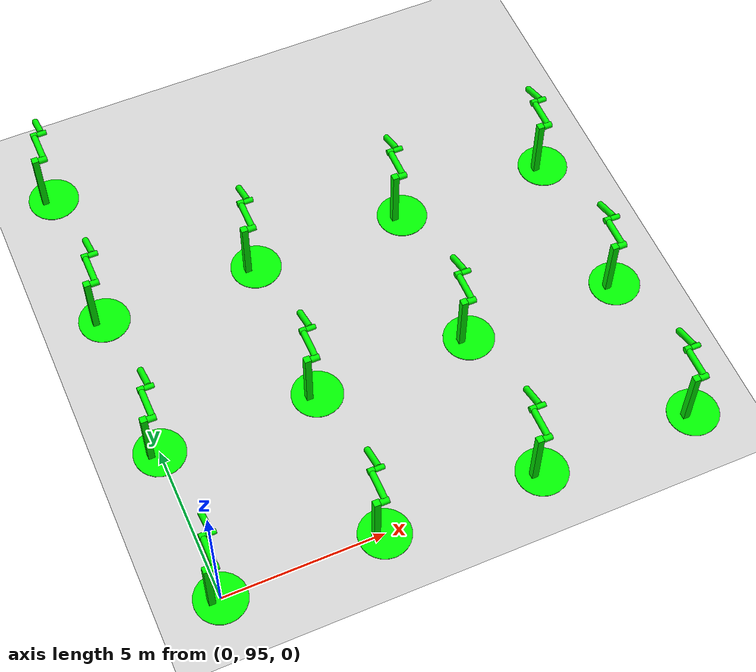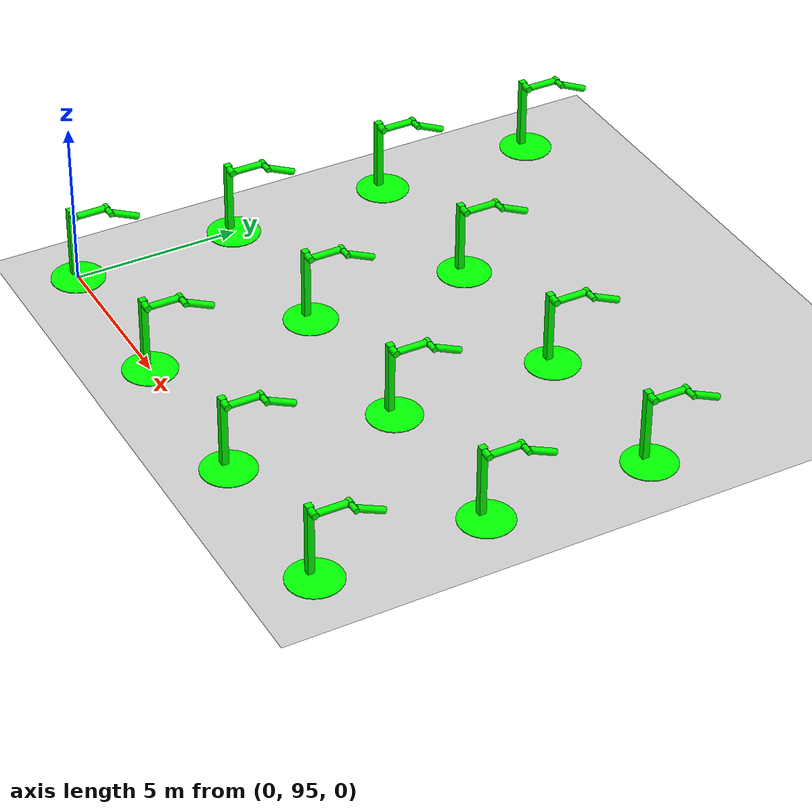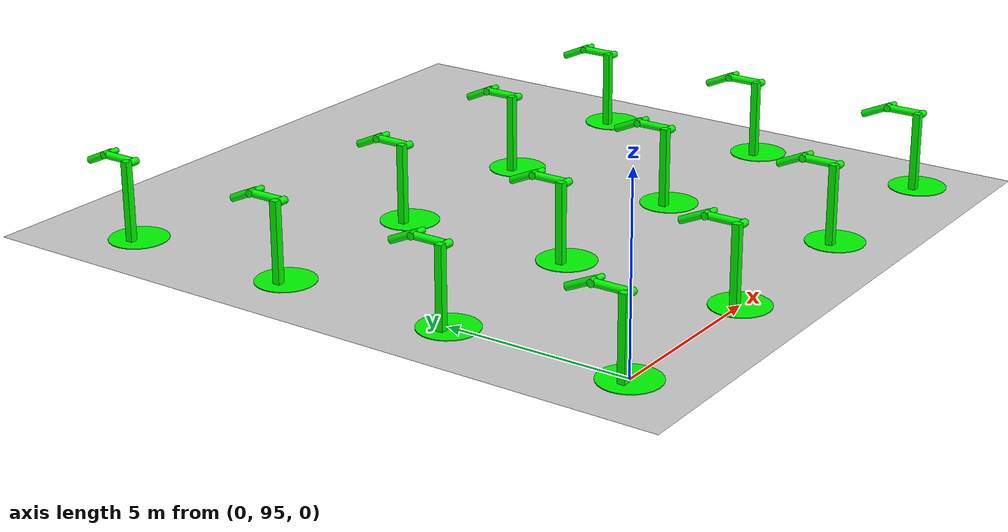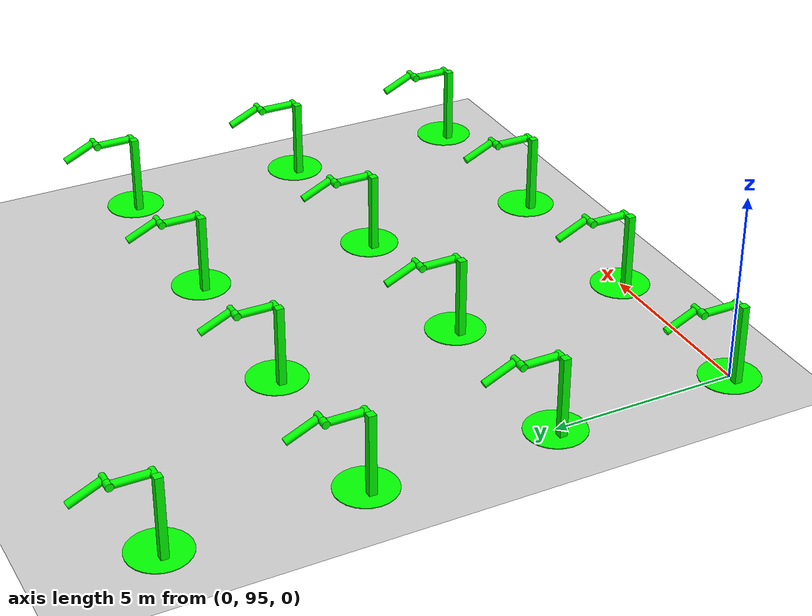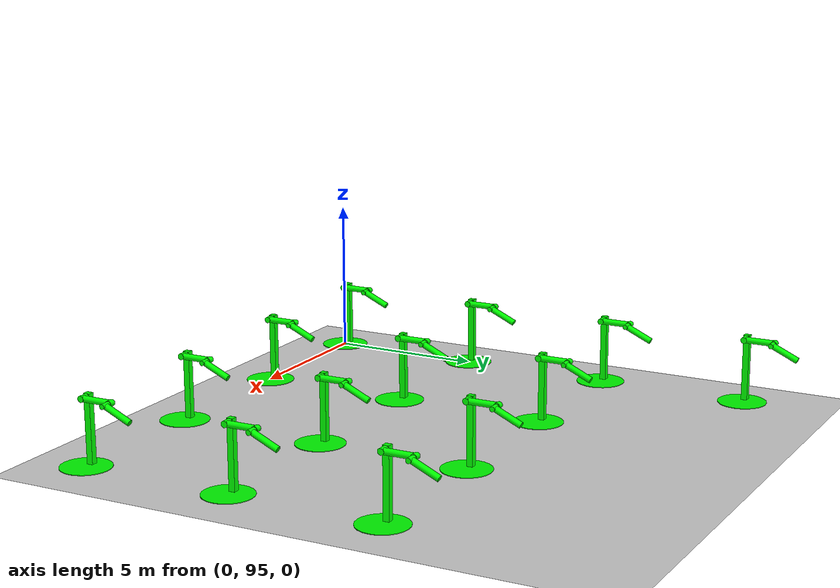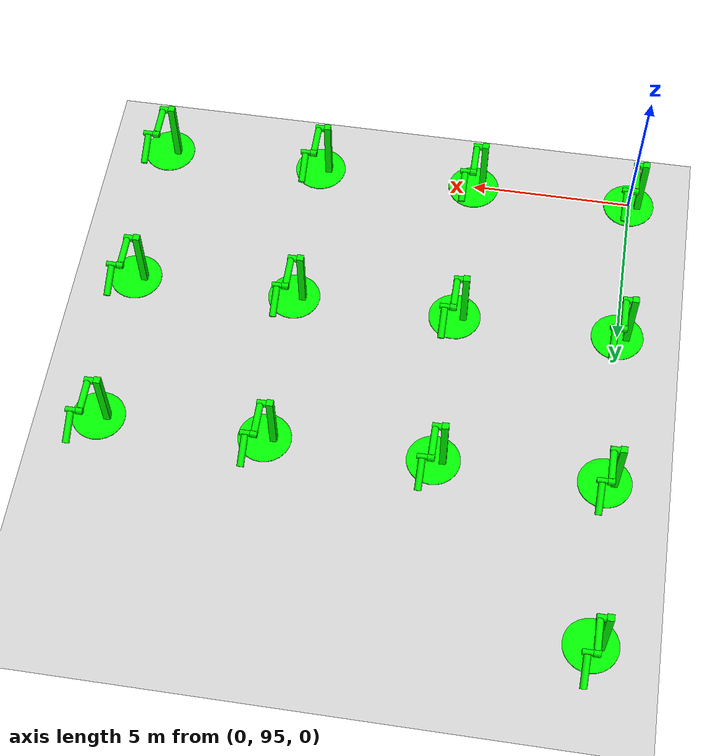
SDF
<sdf version="1.6">
 <world name="double_pendulums">
  <model name="ground_plane">
   <static>true</static>
   <link name="link">
    <collision name="collision">
     <geometry><plane><normal>0 0 1</normal><size>100 100</size></plane></geometry>
    </collision>
    <visual name="visual">
     <geometry><plane><normal>0 0 1</normal><size>100 100</size></plane></geometry>
     <material>
      <ambient>0.8 0.8 0.8 1</ambient>
      <diffuse>0.8 0.8 0.8 1</diffuse>
      <specular>0.8 0.8 0.8 1</specular>
     </material>
    </visual>
   </link>
  </model>
  <model name="dbl_pendulum_485">
   <pose>0 95 0 0 0 0</pose>
   <link name="base">
    <inertial><mass>100</mass></inertial>
    <visual name="vis_plate_on_ground">
     <pose>0 0 0.01 0 0 0</pose>
     <geometry><cylinder><radius>0.8</radius><length>0.02</length></cylinder></geometry>
     <material><ambient>0 1 0 1</ambient><diffuse>0 1 0 1</diffuse><specular>0 1 0 1</specular></material>
    </visual>
    <visual name="vis_pole">
     <pose>-0.275 0 1.1 0 0 0</pose>
     <geometry><box><size>0.2 0.2 2.2</size></box></geometry>
     <material><ambient>0 1 0 1</ambient><diffuse>0 1 0 1</diffuse><specular>0 1 0 1</specular></material>
    </visual>
    <collision name="col_plate_on_ground">
     <pose>0 0 0.01 0 0 0</pose>
     <geometry><cylinder><radius>0.8</radius><length>0.02</length></cylinder></geometry>
    </collision>
    <collision name="col_pole">
     <pose>-0.275 0 1.1 0 0 0</pose>
     <geometry><box><size>0.2 0.2 2.2</size></box></geometry>
    </collision>
   </link>
   <link name="upper_link">
    <pose>0 0 2.1 -1.5708 0 0</pose>
    <inertial><pose>0 0 0.5 0 0 0</pose></inertial>
    <visual name="vis_upper_joint">
     <pose>-0.05 0 0 0 1.5708 0</pose>
     <geometry><cylinder><radius>0.1</radius><length>0.3</length></cylinder></geometry>
     <material><ambient>0 1 0 1</ambient><diffuse>0 1 0 1</diffuse><specular>0 1 0 1</specular></material>
    </visual>
    <visual name="vis_lower_joint">
     <pose>0 0 1.0 0 1.5708 0</pose>
     <geometry><cylinder><radius>0.1</radius><length>0.2</length></cylinder></geometry>
     <material><ambient>0 1 0 1</ambient><diffuse>0 1 0 1</diffuse><specular>0 1 0 1</specular></material>
    </visual>
    <visual name="vis_cylinder">
     <pose>0 0 0.5 0 0 0</pose>
     <geometry><cylinder><radius>0.1</radius><length>0.9</length></cylinder></geometry>
     <material><ambient>0 1 0 1</ambient><diffuse>0 1 0 1</diffuse><specular>0 1 0 1</specular></material>
    </visual>
    <collision name="col_upper_joint">
     <pose>-0.05 0 0 0 1.5708 0</pose>
     <geometry><cylinder><radius>0.1</radius><length>0.3</length></cylinder></geometry>
    </collision>
    <collision name="col_lower_joint">
     <pose>0 0 1.0 0 1.5708 0</pose>
     <geometry><cylinder><radius>0.1</radius><length>0.2</length></cylinder></geometry>
    </collision>
    <collision name="col_cylinder">
     <pose>0 0 0.5 0 0 0</pose>
     <geometry><cylinder><radius>0.1</radius><length>0.9</length></cylinder></geometry>
    </collision>
   </link>
   <link name="lower_link">
    <pose>0.25 1.0 2.1 -2 0 0</pose>
    <inertial><pose>0 0 0.5 0 0 0</pose></inertial>
    <visual name="vis_lower_joint">
     <pose>0 0 0 0 1.5708 0</pose>
     <geometry><cylinder><radius>0.08</radius><length>0.3</length></cylinder></geometry>
     <material><ambient>0 1 0 1</ambient><diffuse>0 1 0 1</diffuse><specular>0 1 0 1</specular></material>
    </visual>
    <visual name="vis_cylinder">
     <pose>0 0 0.5 0 0 0</pose>
     <geometry><cylinder><radius>0.1</radius><length>0.9</length></cylinder></geometry>
     <material><ambient>0 1 0 1</ambient><diffuse>0 1 0 1</diffuse><specular>0 1 0 1</specular></material>
    </visual>
    <collision name="col_lower_joint">
     <pose>0 0 0 0 1.5708 0</pose>
     <geometry><cylinder><radius>0.08</radius><length>0.3</length></cylinder></geometry>
    </collision>
    <collision name="col_cylinder">
     <pose>0 0 0.5 0 0 0</pose>
     <geometry><cylinder><radius>0.1</radius><length>0.9</length></cylinder></geometry>
    </collision>
   </link>
   <joint name="upper_joint" type="revolute">
    <parent>base</parent>
    <child>upper_link</child>
    <axis><xyz>1.0 0 0</xyz></axis>
   </joint>
   <joint name="lower_joint" type="revolute">
    <parent>upper_link</parent>
    <child>lower_link</child>
    <axis><xyz>1.0 0 0</xyz></axis>
   </joint>
  </model>
  <model name="dbl_pendulum_486">
   <pose>5 95 0 0 0 0</pose>
   <link name="base">
    <inertial><mass>100</mass></inertial>
    <visual name="vis_plate_on_ground">
     <pose>0 0 0.01 0 0 0</pose>
     <geometry><cylinder><radius>0.8</radius><length>0.02</length></cylinder></geometry>
     <material><ambient>0 1 0 1</ambient><diffuse>0 1 0 1</diffuse><specular>0 1 0 1</specular></material>
    </visual>
    <visual name="vis_pole">
     <pose>-0.275 0 1.1 0 0 0</pose>
     <geometry><box><size>0.2 0.2 2.2</size></box></geometry>
     <material><ambient>0 1 0 1</ambient><diffuse>0 1 0 1</diffuse><specular>0 1 0 1</specular></material>
    </visual>
    <collision name="col_plate_on_ground">
     <pose>0 0 0.01 0 0 0</pose>
     <geometry><cylinder><radius>0.8</radius><length>0.02</length></cylinder></geometry>
    </collision>
    <collision name="col_pole">
     <pose>-0.275 0 1.1 0 0 0</pose>
     <geometry><box><size>0.2 0.2 2.2</size></box></geometry>
    </collision>
   </link>
   <link name="upper_link">
    <pose>0 0 2.1 -1.5708 0 0</pose>
    <inertial><pose>0 0 0.5 0 0 0</pose></inertial>
    <visual name="vis_upper_joint">
     <pose>-0.05 0 0 0 1.5708 0</pose>
     <geometry><cylinder><radius>0.1</radius><length>0.3</length></cylinder></geometry>
     <material><ambient>0 1 0 1</ambient><diffuse>0 1 0 1</diffuse><specular>0 1 0 1</specular></material>
    </visual>
    <visual name="vis_lower_joint">
     <pose>0 0 1.0 0 1.5708 0</pose>
     <geometry><cylinder><radius>0.1</radius><length>0.2</length></cylinder></geometry>
     <material><ambient>0 1 0 1</ambient><diffuse>0 1 0 1</diffuse><specular>0 1 0 1</specular></material>
    </visual>
    <visual name="vis_cylinder">
     <pose>0 0 0.5 0 0 0</pose>
     <geometry><cylinder><radius>0.1</radius><length>0.9</length></cylinder></geometry>
     <material><ambient>0 1 0 1</ambient><diffuse>0 1 0 1</diffuse><specular>0 1 0 1</specular></material>
    </visual>
    <collision name="col_upper_joint">
     <pose>-0.05 0 0 0 1.5708 0</pose>
     <geometry><cylinder><radius>0.1</radius><length>0.3</length></cylinder></geometry>
    </collision>
    <collision name="col_lower_joint">
     <pose>0 0 1.0 0 1.5708 0</pose>
     <geometry><cylinder><radius>0.1</radius><length>0.2</length></cylinder></geometry>
    </collision>
    <collision name="col_cylinder">
     <pose>0 0 0.5 0 0 0</pose>
     <geometry><cylinder><radius>0.1</radius><length>0.9</length></cylinder></geometry>
    </collision>
   </link>
   <link name="lower_link">
    <pose>0.25 1.0 2.1 -2 0 0</pose>
    <inertial><pose>0 0 0.5 0 0 0</pose></inertial>
    <visual name="vis_lower_joint">
     <pose>0 0 0 0 1.5708 0</pose>
     <geometry><cylinder><radius>0.08</radius><length>0.3</length></cylinder></geometry>
     <material><ambient>0 1 0 1</ambient><diffuse>0 1 0 1</diffuse><specular>0 1 0 1</specular></material>
    </visual>
    <visual name="vis_cylinder">
     <pose>0 0 0.5 0 0 0</pose>
     <geometry><cylinder><radius>0.1</radius><length>0.9</length></cylinder></geometry>
     <material><ambient>0 1 0 1</ambient><diffuse>0 1 0 1</diffuse><specular>0 1 0 1</specular></material>
    </visual>
    <collision name="col_lower_joint">
     <pose>0 0 0 0 1.5708 0</pose>
     <geometry><cylinder><radius>0.08</radius><length>0.3</length></cylinder></geometry>
    </collision>
    <collision name="col_cylinder">
     <pose>0 0 0.5 0 0 0</pose>
     <geometry><cylinder><radius>0.1</radius><length>0.9</length></cylinder></geometry>
    </collision>
   </link>
   <joint name="upper_joint" type="revolute">
    <parent>base</parent>
    <child>upper_link</child>
    <axis><xyz>1.0 0 0</xyz></axis>
   </joint>
   <joint name="lower_joint" type="revolute">
    <parent>upper_link</parent>
    <child>lower_link</child>
    <axis><xyz>1.0 0 0</xyz></axis>
   </joint>
  </model>
  <model name="dbl_pendulum_487">
   <pose>10 95 0 0 0 0</pose>
   <link name="base">
    <inertial><mass>100</mass></inertial>
    <visual name="vis_plate_on_ground">
     <pose>0 0 0.01 0 0 0</pose>
     <geometry><cylinder><radius>0.8</radius><length>0.02</length></cylinder></geometry>
     <material><ambient>0 1 0 1</ambient><diffuse>0 1 0 1</diffuse><specular>0 1 0 1</specular></material>
    </visual>
    <visual name="vis_pole">
     <pose>-0.275 0 1.1 0 0 0</pose>
     <geometry><box><size>0.2 0.2 2.2</size></box></geometry>
     <material><ambient>0 1 0 1</ambient><diffuse>0 1 0 1</diffuse><specular>0 1 0 1</specular></material>
    </visual>
    <collision name="col_plate_on_ground">
     <pose>0 0 0.01 0 0 0</pose>
     <geometry><cylinder><radius>0.8</radius><length>0.02</length></cylinder></geometry>
    </collision>
    <collision name="col_pole">
     <pose>-0.275 0 1.1 0 0 0</pose>
     <geometry><box><size>0.2 0.2 2.2</size></box></geometry>
    </collision>
   </link>
   <link name="upper_link">
    <pose>0 0 2.1 -1.5708 0 0</pose>
    <inertial><pose>0 0 0.5 0 0 0</pose></inertial>
    <visual name="vis_upper_joint">
     <pose>-0.05 0 0 0 1.5708 0</pose>
     <geometry><cylinder><radius>0.1</radius><length>0.3</length></cylinder></geometry>
     <material><ambient>0 1 0 1</ambient><diffuse>0 1 0 1</diffuse><specular>0 1 0 1</specular></material>
    </visual>
    <visual name="vis_lower_joint">
     <pose>0 0 1.0 0 1.5708 0</pose>
     <geometry><cylinder><radius>0.1</radius><length>0.2</length></cylinder></geometry>
     <material><ambient>0 1 0 1</ambient><diffuse>0 1 0 1</diffuse><specular>0 1 0 1</specular></material>
    </visual>
    <visual name="vis_cylinder">
     <pose>0 0 0.5 0 0 0</pose>
     <geometry><cylinder><radius>0.1</radius><length>0.9</length></cylinder></geometry>
     <material><ambient>0 1 0 1</ambient><diffuse>0 1 0 1</diffuse><specular>0 1 0 1</specular></material>
    </visual>
    <collision name="col_upper_joint">
     <pose>-0.05 0 0 0 1.5708 0</pose>
     <geometry><cylinder><radius>0.1</radius><length>0.3</length></cylinder></geometry>
    </collision>
    <collision name="col_lower_joint">
     <pose>0 0 1.0 0 1.5708 0</pose>
     <geometry><cylinder><radius>0.1</radius><length>0.2</length></cylinder></geometry>
    </collision>
    <collision name="col_cylinder">
     <pose>0 0 0.5 0 0 0</pose>
     <geometry><cylinder><radius>0.1</radius><length>0.9</length></cylinder></geometry>
    </collision>
   </link>
   <link name="lower_link">
    <pose>0.25 1.0 2.1 -2 0 0</pose>
    <inertial><pose>0 0 0.5 0 0 0</pose></inertial>
    <visual name="vis_lower_joint">
     <pose>0 0 0 0 1.5708 0</pose>
     <geometry><cylinder><radius>0.08</radius><length>0.3</length></cylinder></geometry>
     <material><ambient>0 1 0 1</ambient><diffuse>0 1 0 1</diffuse><specular>0 1 0 1</specular></material>
    </visual>
    <visual name="vis_cylinder">
     <pose>0 0 0.5 0 0 0</pose>
     <geometry><cylinder><radius>0.1</radius><length>0.9</length></cylinder></geometry>
     <material><ambient>0 1 0 1</ambient><diffuse>0 1 0 1</diffuse><specular>0 1 0 1</specular></material>
    </visual>
    <collision name="col_lower_joint">
     <pose>0 0 0 0 1.5708 0</pose>
     <geometry><cylinder><radius>0.08</radius><length>0.3</length></cylinder></geometry>
    </collision>
    <collision name="col_cylinder">
     <pose>0 0 0.5 0 0 0</pose>
     <geometry><cylinder><radius>0.1</radius><length>0.9</length></cylinder></geometry>
    </collision>
   </link>
   <joint name="upper_joint" type="revolute">
    <parent>base</parent>
    <child>upper_link</child>
    <axis><xyz>1.0 0 0</xyz></axis>
   </joint>
   <joint name="lower_joint" type="revolute">
    <parent>upper_link</parent>
    <child>lower_link</child>
    <axis><xyz>1.0 0 0</xyz></axis>
   </joint>
  </model>
  <model name="dbl_pendulum_488">
   <pose>15 95 0 0 0 0</pose>
   <link name="base">
    <inertial><mass>100</mass></inertial>
    <visual name="vis_plate_on_ground">
     <pose>0 0 0.01 0 0 0</pose>
     <geometry><cylinder><radius>0.8</radius><length>0.02</length></cylinder></geometry>
     <material><ambient>0 1 0 1</ambient><diffuse>0 1 0 1</diffuse><specular>0 1 0 1</specular></material>
    </visual>
    <visual name="vis_pole">
     <pose>-0.275 0 1.1 0 0 0</pose>
     <geometry><box><size>0.2 0.2 2.2</size></box></geometry>
     <material><ambient>0 1 0 1</ambient><diffuse>0 1 0 1</diffuse><specular>0 1 0 1</specular></material>
    </visual>
    <collision name="col_plate_on_ground">
     <pose>0 0 0.01 0 0 0</pose>
     <geometry><cylinder><radius>0.8</radius><length>0.02</length></cylinder></geometry>
    </collision>
    <collision name="col_pole">
     <pose>-0.275 0 1.1 0 0 0</pose>
     <geometry><box><size>0.2 0.2 2.2</size></box></geometry>
    </collision>
   </link>
   <link name="upper_link">
    <pose>0 0 2.1 -1.5708 0 0</pose>
    <inertial><pose>0 0 0.5 0 0 0</pose></inertial>
    <visual name="vis_upper_joint">
     <pose>-0.05 0 0 0 1.5708 0</pose>
     <geometry><cylinder><radius>0.1</radius><length>0.3</length></cylinder></geometry>
     <material><ambient>0 1 0 1</ambient><diffuse>0 1 0 1</diffuse><specular>0 1 0 1</specular></material>
    </visual>
    <visual name="vis_lower_joint">
     <pose>0 0 1.0 0 1.5708 0</pose>
     <geometry><cylinder><radius>0.1</radius><length>0.2</length></cylinder></geometry>
     <material><ambient>0 1 0 1</ambient><diffuse>0 1 0 1</diffuse><specular>0 1 0 1</specular></material>
    </visual>
    <visual name="vis_cylinder">
     <pose>0 0 0.5 0 0 0</pose>
     <geometry><cylinder><radius>0.1</radius><length>0.9</length></cylinder></geometry>
     <material><ambient>0 1 0 1</ambient><diffuse>0 1 0 1</diffuse><specular>0 1 0 1</specular></material>
    </visual>
    <collision name="col_upper_joint">
     <pose>-0.05 0 0 0 1.5708 0</pose>
     <geometry><cylinder><radius>0.1</radius><length>0.3</length></cylinder></geometry>
    </collision>
    <collision name="col_lower_joint">
     <pose>0 0 1.0 0 1.5708 0</pose>
     <geometry><cylinder><radius>0.1</radius><length>0.2</length></cylinder></geometry>
    </collision>
    <collision name="col_cylinder">
     <pose>0 0 0.5 0 0 0</pose>
     <geometry><cylinder><radius>0.1</radius><length>0.9</length></cylinder></geometry>
    </collision>
   </link>
   <link name="lower_link">
    <pose>0.25 1.0 2.1 -2 0 0</pose>
    <inertial><pose>0 0 0.5 0 0 0</pose></inertial>
    <visual name="vis_lower_joint">
     <pose>0 0 0 0 1.5708 0</pose>
     <geometry><cylinder><radius>0.08</radius><length>0.3</length></cylinder></geometry>
     <material><ambient>0 1 0 1</ambient><diffuse>0 1 0 1</diffuse><specular>0 1 0 1</specular></material>
    </visual>
    <visual name="vis_cylinder">
     <pose>0 0 0.5 0 0 0</pose>
     <geometry><cylinder><radius>0.1</radius><length>0.9</length></cylinder></geometry>
     <material><ambient>0 1 0 1</ambient><diffuse>0 1 0 1</diffuse><specular>0 1 0 1</specular></material>
    </visual>
    <collision name="col_lower_joint">
     <pose>0 0 0 0 1.5708 0</pose>
     <geometry><cylinder><radius>0.08</radius><length>0.3</length></cylinder></geometry>
    </collision>
    <collision name="col_cylinder">
     <pose>0 0 0.5 0 0 0</pose>
     <geometry><cylinder><radius>0.1</radius><length>0.9</length></cylinder></geometry>
    </collision>
   </link>
   <joint name="upper_joint" type="revolute">
    <parent>base</parent>
    <child>upper_link</child>
    <axis><xyz>1.0 0 0</xyz></axis>
   </joint>
   <joint name="lower_joint" type="revolute">
    <parent>upper_link</parent>
    <child>lower_link</child>
    <axis><xyz>1.0 0 0</xyz></axis>
   </joint>
  </model>
  <model name="dbl_pendulum_510">
   <pose>0 100 0 0 0 0</pose>
   <link name="base">
    <inertial><mass>100</mass></inertial>
    <visual name="vis_plate_on_ground">
     <pose>0 0 0.01 0 0 0</pose>
     <geometry><cylinder><radius>0.8</radius><length>0.02</length></cylinder></geometry>
     <material><ambient>0 1 0 1</ambient><diffuse>0 1 0 1</diffuse><specular>0 1 0 1</specular></material>
    </visual>
    <visual name="vis_pole">
     <pose>-0.275 0 1.1 0 0 0</pose>
     <geometry><box><size>0.2 0.2 2.2</size></box></geometry>
     <material><ambient>0 1 0 1</ambient><diffuse>0 1 0 1</diffuse><specular>0 1 0 1</specular></material>
    </visual>
    <collision name="col_plate_on_ground">
     <pose>0 0 0.01 0 0 0</pose>
     <geometry><cylinder><radius>0.8</radius><length>0.02</length></cylinder></geometry>
    </collision>
    <collision name="col_pole">
     <pose>-0.275 0 1.1 0 0 0</pose>
     <geometry><box><size>0.2 0.2 2.2</size></box></geometry>
    </collision>
   </link>
   <link name="upper_link">
    <pose>0 0 2.1 -1.5708 0 0</pose>
    <inertial><pose>0 0 0.5 0 0 0</pose></inertial>
    <visual name="vis_upper_joint">
     <pose>-0.05 0 0 0 1.5708 0</pose>
     <geometry><cylinder><radius>0.1</radius><length>0.3</length></cylinder></geometry>
     <material><ambient>0 1 0 1</ambient><diffuse>0 1 0 1</diffuse><specular>0 1 0 1</specular></material>
    </visual>
    <visual name="vis_lower_joint">
     <pose>0 0 1.0 0 1.5708 0</pose>
     <geometry><cylinder><radius>0.1</radius><length>0.2</length></cylinder></geometry>
     <material><ambient>0 1 0 1</ambient><diffuse>0 1 0 1</diffuse><specular>0 1 0 1</specular></material>
    </visual>
    <visual name="vis_cylinder">
     <pose>0 0 0.5 0 0 0</pose>
     <geometry><cylinder><radius>0.1</radius><length>0.9</length></cylinder></geometry>
     <material><ambient>0 1 0 1</ambient><diffuse>0 1 0 1</diffuse><specular>0 1 0 1</specular></material>
    </visual>
    <collision name="col_upper_joint">
     <pose>-0.05 0 0 0 1.5708 0</pose>
     <geometry><cylinder><radius>0.1</radius><length>0.3</length></cylinder></geometry>
    </collision>
    <collision name="col_lower_joint">
     <pose>0 0 1.0 0 1.5708 0</pose>
     <geometry><cylinder><radius>0.1</radius><length>0.2</length></cylinder></geometry>
    </collision>
    <collision name="col_cylinder">
     <pose>0 0 0.5 0 0 0</pose>
     <geometry><cylinder><radius>0.1</radius><length>0.9</length></cylinder></geometry>
    </collision>
   </link>
   <link name="lower_link">
    <pose>0.25 1.0 2.1 -2 0 0</pose>
    <inertial><pose>0 0 0.5 0 0 0</pose></inertial>
    <visual name="vis_lower_joint">
     <pose>0 0 0 0 1.5708 0</pose>
     <geometry><cylinder><radius>0.08</radius><length>0.3</length></cylinder></geometry>
     <material><ambient>0 1 0 1</ambient><diffuse>0 1 0 1</diffuse><specular>0 1 0 1</specular></material>
    </visual>
    <visual name="vis_cylinder">
     <pose>0 0 0.5 0 0 0</pose>
     <geometry><cylinder><radius>0.1</radius><length>0.9</length></cylinder></geometry>
     <material><ambient>0 1 0 1</ambient><diffuse>0 1 0 1</diffuse><specular>0 1 0 1</specular></material>
    </visual>
    <collision name="col_lower_joint">
     <pose>0 0 0 0 1.5708 0</pose>
     <geometry><cylinder><radius>0.08</radius><length>0.3</length></cylinder></geometry>
    </collision>
    <collision name="col_cylinder">
     <pose>0 0 0.5 0 0 0</pose>
     <geometry><cylinder><radius>0.1</radius><length>0.9</length></cylinder></geometry>
    </collision>
   </link>
   <joint name="upper_joint" type="revolute">
    <parent>base</parent>
    <child>upper_link</child>
    <axis><xyz>1.0 0 0</xyz></axis>
   </joint>
   <joint name="lower_joint" type="revolute">
    <parent>upper_link</parent>
    <child>lower_link</child>
    <axis><xyz>1.0 0 0</xyz></axis>
   </joint>
  </model>
  <model name="dbl_pendulum_511">
   <pose>5 100 0 0 0 0</pose>
   <link name="base">
    <inertial><mass>100</mass></inertial>
    <visual name="vis_plate_on_ground">
     <pose>0 0 0.01 0 0 0</pose>
     <geometry><cylinder><radius>0.8</radius><length>0.02</length></cylinder></geometry>
     <material><ambient>0 1 0 1</ambient><diffuse>0 1 0 1</diffuse><specular>0 1 0 1</specular></material>
    </visual>
    <visual name="vis_pole">
     <pose>-0.275 0 1.1 0 0 0</pose>
     <geometry><box><size>0.2 0.2 2.2</size></box></geometry>
     <material><ambient>0 1 0 1</ambient><diffuse>0 1 0 1</diffuse><specular>0 1 0 1</specular></material>
    </visual>
    <collision name="col_plate_on_ground">
     <pose>0 0 0.01 0 0 0</pose>
     <geometry><cylinder><radius>0.8</radius><length>0.02</length></cylinder></geometry>
    </collision>
    <collision name="col_pole">
     <pose>-0.275 0 1.1 0 0 0</pose>
     <geometry><box><size>0.2 0.2 2.2</size></box></geometry>
    </collision>
   </link>
   <link name="upper_link">
    <pose>0 0 2.1 -1.5708 0 0</pose>
    <inertial><pose>0 0 0.5 0 0 0</pose></inertial>
    <visual name="vis_upper_joint">
     <pose>-0.05 0 0 0 1.5708 0</pose>
     <geometry><cylinder><radius>0.1</radius><length>0.3</length></cylinder></geometry>
     <material><ambient>0 1 0 1</ambient><diffuse>0 1 0 1</diffuse><specular>0 1 0 1</specular></material>
    </visual>
    <visual name="vis_lower_joint">
     <pose>0 0 1.0 0 1.5708 0</pose>
     <geometry><cylinder><radius>0.1</radius><length>0.2</length></cylinder></geometry>
     <material><ambient>0 1 0 1</ambient><diffuse>0 1 0 1</diffuse><specular>0 1 0 1</specular></material>
    </visual>
    <visual name="vis_cylinder">
     <pose>0 0 0.5 0 0 0</pose>
     <geometry><cylinder><radius>0.1</radius><length>0.9</length></cylinder></geometry>
     <material><ambient>0 1 0 1</ambient><diffuse>0 1 0 1</diffuse><specular>0 1 0 1</specular></material>
    </visual>
    <collision name="col_upper_joint">
     <pose>-0.05 0 0 0 1.5708 0</pose>
     <geometry><cylinder><radius>0.1</radius><length>0.3</length></cylinder></geometry>
    </collision>
    <collision name="col_lower_joint">
     <pose>0 0 1.0 0 1.5708 0</pose>
     <geometry><cylinder><radius>0.1</radius><length>0.2</length></cylinder></geometry>
    </collision>
    <collision name="col_cylinder">
     <pose>0 0 0.5 0 0 0</pose>
     <geometry><cylinder><radius>0.1</radius><length>0.9</length></cylinder></geometry>
    </collision>
   </link>
   <link name="lower_link">
    <pose>0.25 1.0 2.1 -2 0 0</pose>
    <inertial><pose>0 0 0.5 0 0 0</pose></inertial>
    <visual name="vis_lower_joint">
     <pose>0 0 0 0 1.5708 0</pose>
     <geometry><cylinder><radius>0.08</radius><length>0.3</length></cylinder></geometry>
     <material><ambient>0 1 0 1</ambient><diffuse>0 1 0 1</diffuse><specular>0 1 0 1</specular></material>
    </visual>
    <visual name="vis_cylinder">
     <pose>0 0 0.5 0 0 0</pose>
     <geometry><cylinder><radius>0.1</radius><length>0.9</length></cylinder></geometry>
     <material><ambient>0 1 0 1</ambient><diffuse>0 1 0 1</diffuse><specular>0 1 0 1</specular></material>
    </visual>
    <collision name="col_lower_joint">
     <pose>0 0 0 0 1.5708 0</pose>
     <geometry><cylinder><radius>0.08</radius><length>0.3</length></cylinder></geometry>
    </collision>
    <collision name="col_cylinder">
     <pose>0 0 0.5 0 0 0</pose>
     <geometry><cylinder><radius>0.1</radius><length>0.9</length></cylinder></geometry>
    </collision>
   </link>
   <joint name="upper_joint" type="revolute">
    <parent>base</parent>
    <child>upper_link</child>
    <axis><xyz>1.0 0 0</xyz></axis>
   </joint>
   <joint name="lower_joint" type="revolute">
    <parent>upper_link</parent>
    <child>lower_link</child>
    <axis><xyz>1.0 0 0</xyz></axis>
   </joint>
  </model>
  <model name="dbl_pendulum_512">
   <pose>10 100 0 0 0 0</pose>
   <link name="base">
    <inertial><mass>100</mass></inertial>
    <visual name="vis_plate_on_ground">
     <pose>0 0 0.01 0 0 0</pose>
     <geometry><cylinder><radius>0.8</radius><length>0.02</length></cylinder></geometry>
     <material><ambient>0 1 0 1</ambient><diffuse>0 1 0 1</diffuse><specular>0 1 0 1</specular></material>
    </visual>
    <visual name="vis_pole">
     <pose>-0.275 0 1.1 0 0 0</pose>
     <geometry><box><size>0.2 0.2 2.2</size></box></geometry>
     <material><ambient>0 1 0 1</ambient><diffuse>0 1 0 1</diffuse><specular>0 1 0 1</specular></material>
    </visual>
    <collision name="col_plate_on_ground">
     <pose>0 0 0.01 0 0 0</pose>
     <geometry><cylinder><radius>0.8</radius><length>0.02</length></cylinder></geometry>
    </collision>
    <collision name="col_pole">
     <pose>-0.275 0 1.1 0 0 0</pose>
     <geometry><box><size>0.2 0.2 2.2</size></box></geometry>
    </collision>
   </link>
   <link name="upper_link">
    <pose>0 0 2.1 -1.5708 0 0</pose>
    <inertial><pose>0 0 0.5 0 0 0</pose></inertial>
    <visual name="vis_upper_joint">
     <pose>-0.05 0 0 0 1.5708 0</pose>
     <geometry><cylinder><radius>0.1</radius><length>0.3</length></cylinder></geometry>
     <material><ambient>0 1 0 1</ambient><diffuse>0 1 0 1</diffuse><specular>0 1 0 1</specular></material>
    </visual>
    <visual name="vis_lower_joint">
     <pose>0 0 1.0 0 1.5708 0</pose>
     <geometry><cylinder><radius>0.1</radius><length>0.2</length></cylinder></geometry>
     <material><ambient>0 1 0 1</ambient><diffuse>0 1 0 1</diffuse><specular>0 1 0 1</specular></material>
    </visual>
    <visual name="vis_cylinder">
     <pose>0 0 0.5 0 0 0</pose>
     <geometry><cylinder><radius>0.1</radius><length>0.9</length></cylinder></geometry>
     <material><ambient>0 1 0 1</ambient><diffuse>0 1 0 1</diffuse><specular>0 1 0 1</specular></material>
    </visual>
    <collision name="col_upper_joint">
     <pose>-0.05 0 0 0 1.5708 0</pose>
     <geometry><cylinder><radius>0.1</radius><length>0.3</length></cylinder></geometry>
    </collision>
    <collision name="col_lower_joint">
     <pose>0 0 1.0 0 1.5708 0</pose>
     <geometry><cylinder><radius>0.1</radius><length>0.2</length></cylinder></geometry>
    </collision>
    <collision name="col_cylinder">
     <pose>0 0 0.5 0 0 0</pose>
     <geometry><cylinder><radius>0.1</radius><length>0.9</length></cylinder></geometry>
    </collision>
   </link>
   <link name="lower_link">
    <pose>0.25 1.0 2.1 -2 0 0</pose>
    <inertial><pose>0 0 0.5 0 0 0</pose></inertial>
    <visual name="vis_lower_joint">
     <pose>0 0 0 0 1.5708 0</pose>
     <geometry><cylinder><radius>0.08</radius><length>0.3</length></cylinder></geometry>
     <material><ambient>0 1 0 1</ambient><diffuse>0 1 0 1</diffuse><specular>0 1 0 1</specular></material>
    </visual>
    <visual name="vis_cylinder">
     <pose>0 0 0.5 0 0 0</pose>
     <geometry><cylinder><radius>0.1</radius><length>0.9</length></cylinder></geometry>
     <material><ambient>0 1 0 1</ambient><diffuse>0 1 0 1</diffuse><specular>0 1 0 1</specular></material>
    </visual>
    <collision name="col_lower_joint">
     <pose>0 0 0 0 1.5708 0</pose>
     <geometry><cylinder><radius>0.08</radius><length>0.3</length></cylinder></geometry>
    </collision>
    <collision name="col_cylinder">
     <pose>0 0 0.5 0 0 0</pose>
     <geometry><cylinder><radius>0.1</radius><length>0.9</length></cylinder></geometry>
    </collision>
   </link>
   <joint name="upper_joint" type="revolute">
    <parent>base</parent>
    <child>upper_link</child>
    <axis><xyz>1.0 0 0</xyz></axis>
   </joint>
   <joint name="lower_joint" type="revolute">
    <parent>upper_link</parent>
    <child>lower_link</child>
    <axis><xyz>1.0 0 0</xyz></axis>
   </joint>
  </model>
  <model name="dbl_pendulum_513">
   <pose>15 100 0 0 0 0</pose>
   <link name="base">
    <inertial><mass>100</mass></inertial>
    <visual name="vis_plate_on_ground">
     <pose>0 0 0.01 0 0 0</pose>
     <geometry><cylinder><radius>0.8</radius><length>0.02</length></cylinder></geometry>
     <material><ambient>0 1 0 1</ambient><diffuse>0 1 0 1</diffuse><specular>0 1 0 1</specular></material>
    </visual>
    <visual name="vis_pole">
     <pose>-0.275 0 1.1 0 0 0</pose>
     <geometry><box><size>0.2 0.2 2.2</size></box></geometry>
     <material><ambient>0 1 0 1</ambient><diffuse>0 1 0 1</diffuse><specular>0 1 0 1</specular></material>
    </visual>
    <collision name="col_plate_on_ground">
     <pose>0 0 0.01 0 0 0</pose>
     <geometry><cylinder><radius>0.8</radius><length>0.02</length></cylinder></geometry>
    </collision>
    <collision name="col_pole">
     <pose>-0.275 0 1.1 0 0 0</pose>
     <geometry><box><size>0.2 0.2 2.2</size></box></geometry>
    </collision>
   </link>
   <link name="upper_link">
    <pose>0 0 2.1 -1.5708 0 0</pose>
    <inertial><pose>0 0 0.5 0 0 0</pose></inertial>
    <visual name="vis_upper_joint">
     <pose>-0.05 0 0 0 1.5708 0</pose>
     <geometry><cylinder><radius>0.1</radius><length>0.3</length></cylinder></geometry>
     <material><ambient>0 1 0 1</ambient><diffuse>0 1 0 1</diffuse><specular>0 1 0 1</specular></material>
    </visual>
    <visual name="vis_lower_joint">
     <pose>0 0 1.0 0 1.5708 0</pose>
     <geometry><cylinder><radius>0.1</radius><length>0.2</length></cylinder></geometry>
     <material><ambient>0 1 0 1</ambient><diffuse>0 1 0 1</diffuse><specular>0 1 0 1</specular></material>
    </visual>
    <visual name="vis_cylinder">
     <pose>0 0 0.5 0 0 0</pose>
     <geometry><cylinder><radius>0.1</radius><length>0.9</length></cylinder></geometry>
     <material><ambient>0 1 0 1</ambient><diffuse>0 1 0 1</diffuse><specular>0 1 0 1</specular></material>
    </visual>
    <collision name="col_upper_joint">
     <pose>-0.05 0 0 0 1.5708 0</pose>
     <geometry><cylinder><radius>0.1</radius><length>0.3</length></cylinder></geometry>
    </collision>
    <collision name="col_lower_joint">
     <pose>0 0 1.0 0 1.5708 0</pose>
     <geometry><cylinder><radius>0.1</radius><length>0.2</length></cylinder></geometry>
    </collision>
    <collision name="col_cylinder">
     <pose>0 0 0.5 0 0 0</pose>
     <geometry><cylinder><radius>0.1</radius><length>0.9</length></cylinder></geometry>
    </collision>
   </link>
   <link name="lower_link">
    <pose>0.25 1.0 2.1 -2 0 0</pose>
    <inertial><pose>0 0 0.5 0 0 0</pose></inertial>
    <visual name="vis_lower_joint">
     <pose>0 0 0 0 1.5708 0</pose>
     <geometry><cylinder><radius>0.08</radius><length>0.3</length></cylinder></geometry>
     <material><ambient>0 1 0 1</ambient><diffuse>0 1 0 1</diffuse><specular>0 1 0 1</specular></material>
    </visual>
    <visual name="vis_cylinder">
     <pose>0 0 0.5 0 0 0</pose>
     <geometry><cylinder><radius>0.1</radius><length>0.9</length></cylinder></geometry>
     <material><ambient>0 1 0 1</ambient><diffuse>0 1 0 1</diffuse><specular>0 1 0 1</specular></material>
    </visual>
    <collision name="col_lower_joint">
     <pose>0 0 0 0 1.5708 0</pose>
     <geometry><cylinder><radius>0.08</radius><length>0.3</length></cylinder></geometry>
    </collision>
    <collision name="col_cylinder">
     <pose>0 0 0.5 0 0 0</pose>
     <geometry><cylinder><radius>0.1</radius><length>0.9</length></cylinder></geometry>
    </collision>
   </link>
   <joint name="upper_joint" type="revolute">
    <parent>base</parent>
    <child>upper_link</child>
    <axis><xyz>1.0 0 0</xyz></axis>
   </joint>
   <joint name="lower_joint" type="revolute">
    <parent>upper_link</parent>
    <child>lower_link</child>
    <axis><xyz>1.0 0 0</xyz></axis>
   </joint>
  </model>
  <model name="dbl_pendulum_535">
   <pose>0 105 0 0 0 0</pose>
   <link name="base">
    <inertial><mass>100</mass></inertial>
    <visual name="vis_plate_on_ground">
     <pose>0 0 0.01 0 0 0</pose>
     <geometry><cylinder><radius>0.8</radius><length>0.02</length></cylinder></geometry>
     <material><ambient>0 1 0 1</ambient><diffuse>0 1 0 1</diffuse><specular>0 1 0 1</specular></material>
    </visual>
    <visual name="vis_pole">
     <pose>-0.275 0 1.1 0 0 0</pose>
     <geometry><box><size>0.2 0.2 2.2</size></box></geometry>
     <material><ambient>0 1 0 1</ambient><diffuse>0 1 0 1</diffuse><specular>0 1 0 1</specular></material>
    </visual>
    <collision name="col_plate_on_ground">
     <pose>0 0 0.01 0 0 0</pose>
     <geometry><cylinder><radius>0.8</radius><length>0.02</length></cylinder></geometry>
    </collision>
    <collision name="col_pole">
     <pose>-0.275 0 1.1 0 0 0</pose>
     <geometry><box><size>0.2 0.2 2.2</size></box></geometry>
    </collision>
   </link>
   <link name="upper_link">
    <pose>0 0 2.1 -1.5708 0 0</pose>
    <inertial><pose>0 0 0.5 0 0 0</pose></inertial>
    <visual name="vis_upper_joint">
     <pose>-0.05 0 0 0 1.5708 0</pose>
     <geometry><cylinder><radius>0.1</radius><length>0.3</length></cylinder></geometry>
     <material><ambient>0 1 0 1</ambient><diffuse>0 1 0 1</diffuse><specular>0 1 0 1</specular></material>
    </visual>
    <visual name="vis_lower_joint">
     <pose>0 0 1.0 0 1.5708 0</pose>
     <geometry><cylinder><radius>0.1</radius><length>0.2</length></cylinder></geometry>
     <material><ambient>0 1 0 1</ambient><diffuse>0 1 0 1</diffuse><specular>0 1 0 1</specular></material>
    </visual>
    <visual name="vis_cylinder">
     <pose>0 0 0.5 0 0 0</pose>
     <geometry><cylinder><radius>0.1</radius><length>0.9</length></cylinder></geometry>
     <material><ambient>0 1 0 1</ambient><diffuse>0 1 0 1</diffuse><specular>0 1 0 1</specular></material>
    </visual>
    <collision name="col_upper_joint">
     <pose>-0.05 0 0 0 1.5708 0</pose>
     <geometry><cylinder><radius>0.1</radius><length>0.3</length></cylinder></geometry>
    </collision>
    <collision name="col_lower_joint">
     <pose>0 0 1.0 0 1.5708 0</pose>
     <geometry><cylinder><radius>0.1</radius><length>0.2</length></cylinder></geometry>
    </collision>
    <collision name="col_cylinder">
     <pose>0 0 0.5 0 0 0</pose>
     <geometry><cylinder><radius>0.1</radius><length>0.9</length></cylinder></geometry>
    </collision>
   </link>
   <link name="lower_link">
    <pose>0.25 1.0 2.1 -2 0 0</pose>
    <inertial><pose>0 0 0.5 0 0 0</pose></inertial>
    <visual name="vis_lower_joint">
     <pose>0 0 0 0 1.5708 0</pose>
     <geometry><cylinder><radius>0.08</radius><length>0.3</length></cylinder></geometry>
     <material><ambient>0 1 0 1</ambient><diffuse>0 1 0 1</diffuse><specular>0 1 0 1</specular></material>
    </visual>
    <visual name="vis_cylinder">
     <pose>0 0 0.5 0 0 0</pose>
     <geometry><cylinder><radius>0.1</radius><length>0.9</length></cylinder></geometry>
     <material><ambient>0 1 0 1</ambient><diffuse>0 1 0 1</diffuse><specular>0 1 0 1</specular></material>
    </visual>
    <collision name="col_lower_joint">
     <pose>0 0 0 0 1.5708 0</pose>
     <geometry><cylinder><radius>0.08</radius><length>0.3</length></cylinder></geometry>
    </collision>
    <collision name="col_cylinder">
     <pose>0 0 0.5 0 0 0</pose>
     <geometry><cylinder><radius>0.1</radius><length>0.9</length></cylinder></geometry>
    </collision>
   </link>
   <joint name="upper_joint" type="revolute">
    <parent>base</parent>
    <child>upper_link</child>
    <axis><xyz>1.0 0 0</xyz></axis>
   </joint>
   <joint name="lower_joint" type="revolute">
    <parent>upper_link</parent>
    <child>lower_link</child>
    <axis><xyz>1.0 0 0</xyz></axis>
   </joint>
  </model>
  <model name="dbl_pendulum_536">
   <pose>5 105 0 0 0 0</pose>
   <link name="base">
    <inertial><mass>100</mass></inertial>
    <visual name="vis_plate_on_ground">
     <pose>0 0 0.01 0 0 0</pose>
     <geometry><cylinder><radius>0.8</radius><length>0.02</length></cylinder></geometry>
     <material><ambient>0 1 0 1</ambient><diffuse>0 1 0 1</diffuse><specular>0 1 0 1</specular></material>
    </visual>
    <visual name="vis_pole">
     <pose>-0.275 0 1.1 0 0 0</pose>
     <geometry><box><size>0.2 0.2 2.2</size></box></geometry>
     <material><ambient>0 1 0 1</ambient><diffuse>0 1 0 1</diffuse><specular>0 1 0 1</specular></material>
    </visual>
    <collision name="col_plate_on_ground">
     <pose>0 0 0.01 0 0 0</pose>
     <geometry><cylinder><radius>0.8</radius><length>0.02</length></cylinder></geometry>
    </collision>
    <collision name="col_pole">
     <pose>-0.275 0 1.1 0 0 0</pose>
     <geometry><box><size>0.2 0.2 2.2</size></box></geometry>
    </collision>
   </link>
   <link name="upper_link">
    <pose>0 0 2.1 -1.5708 0 0</pose>
    <inertial><pose>0 0 0.5 0 0 0</pose></inertial>
    <visual name="vis_upper_joint">
     <pose>-0.05 0 0 0 1.5708 0</pose>
     <geometry><cylinder><radius>0.1</radius><length>0.3</length></cylinder></geometry>
     <material><ambient>0 1 0 1</ambient><diffuse>0 1 0 1</diffuse><specular>0 1 0 1</specular></material>
    </visual>
    <visual name="vis_lower_joint">
     <pose>0 0 1.0 0 1.5708 0</pose>
     <geometry><cylinder><radius>0.1</radius><length>0.2</length></cylinder></geometry>
     <material><ambient>0 1 0 1</ambient><diffuse>0 1 0 1</diffuse><specular>0 1 0 1</specular></material>
    </visual>
    <visual name="vis_cylinder">
     <pose>0 0 0.5 0 0 0</pose>
     <geometry><cylinder><radius>0.1</radius><length>0.9</length></cylinder></geometry>
     <material><ambient>0 1 0 1</ambient><diffuse>0 1 0 1</diffuse><specular>0 1 0 1</specular></material>
    </visual>
    <collision name="col_upper_joint">
     <pose>-0.05 0 0 0 1.5708 0</pose>
     <geometry><cylinder><radius>0.1</radius><length>0.3</length></cylinder></geometry>
    </collision>
    <collision name="col_lower_joint">
     <pose>0 0 1.0 0 1.5708 0</pose>
     <geometry><cylinder><radius>0.1</radius><length>0.2</length></cylinder></geometry>
    </collision>
    <collision name="col_cylinder">
     <pose>0 0 0.5 0 0 0</pose>
     <geometry><cylinder><radius>0.1</radius><length>0.9</length></cylinder></geometry>
    </collision>
   </link>
   <link name="lower_link">
    <pose>0.25 1.0 2.1 -2 0 0</pose>
    <inertial><pose>0 0 0.5 0 0 0</pose></inertial>
    <visual name="vis_lower_joint">
     <pose>0 0 0 0 1.5708 0</pose>
     <geometry><cylinder><radius>0.08</radius><length>0.3</length></cylinder></geometry>
     <material><ambient>0 1 0 1</ambient><diffuse>0 1 0 1</diffuse><specular>0 1 0 1</specular></material>
    </visual>
    <visual name="vis_cylinder">
     <pose>0 0 0.5 0 0 0</pose>
     <geometry><cylinder><radius>0.1</radius><length>0.9</length></cylinder></geometry>
     <material><ambient>0 1 0 1</ambient><diffuse>0 1 0 1</diffuse><specular>0 1 0 1</specular></material>
    </visual>
    <collision name="col_lower_joint">
     <pose>0 0 0 0 1.5708 0</pose>
     <geometry><cylinder><radius>0.08</radius><length>0.3</length></cylinder></geometry>
    </collision>
    <collision name="col_cylinder">
     <pose>0 0 0.5 0 0 0</pose>
     <geometry><cylinder><radius>0.1</radius><length>0.9</length></cylinder></geometry>
    </collision>
   </link>
   <joint name="upper_joint" type="revolute">
    <parent>base</parent>
    <child>upper_link</child>
    <axis><xyz>1.0 0 0</xyz></axis>
   </joint>
   <joint name="lower_joint" type="revolute">
    <parent>upper_link</parent>
    <child>lower_link</child>
    <axis><xyz>1.0 0 0</xyz></axis>
   </joint>
  </model>
  <model name="dbl_pendulum_537">
   <pose>10 105 0 0 0 0</pose>
   <link name="base">
    <inertial><mass>100</mass></inertial>
    <visual name="vis_plate_on_ground">
     <pose>0 0 0.01 0 0 0</pose>
     <geometry><cylinder><radius>0.8</radius><length>0.02</length></cylinder></geometry>
     <material><ambient>0 1 0 1</ambient><diffuse>0 1 0 1</diffuse><specular>0 1 0 1</specular></material>
    </visual>
    <visual name="vis_pole">
     <pose>-0.275 0 1.1 0 0 0</pose>
     <geometry><box><size>0.2 0.2 2.2</size></box></geometry>
     <material><ambient>0 1 0 1</ambient><diffuse>0 1 0 1</diffuse><specular>0 1 0 1</specular></material>
    </visual>
    <collision name="col_plate_on_ground">
     <pose>0 0 0.01 0 0 0</pose>
     <geometry><cylinder><radius>0.8</radius><length>0.02</length></cylinder></geometry>
    </collision>
    <collision name="col_pole">
     <pose>-0.275 0 1.1 0 0 0</pose>
     <geometry><box><size>0.2 0.2 2.2</size></box></geometry>
    </collision>
   </link>
   <link name="upper_link">
    <pose>0 0 2.1 -1.5708 0 0</pose>
    <inertial><pose>0 0 0.5 0 0 0</pose></inertial>
    <visual name="vis_upper_joint">
     <pose>-0.05 0 0 0 1.5708 0</pose>
     <geometry><cylinder><radius>0.1</radius><length>0.3</length></cylinder></geometry>
     <material><ambient>0 1 0 1</ambient><diffuse>0 1 0 1</diffuse><specular>0 1 0 1</specular></material>
    </visual>
    <visual name="vis_lower_joint">
     <pose>0 0 1.0 0 1.5708 0</pose>
     <geometry><cylinder><radius>0.1</radius><length>0.2</length></cylinder></geometry>
     <material><ambient>0 1 0 1</ambient><diffuse>0 1 0 1</diffuse><specular>0 1 0 1</specular></material>
    </visual>
    <visual name="vis_cylinder">
     <pose>0 0 0.5 0 0 0</pose>
     <geometry><cylinder><radius>0.1</radius><length>0.9</length></cylinder></geometry>
     <material><ambient>0 1 0 1</ambient><diffuse>0 1 0 1</diffuse><specular>0 1 0 1</specular></material>
    </visual>
    <collision name="col_upper_joint">
     <pose>-0.05 0 0 0 1.5708 0</pose>
     <geometry><cylinder><radius>0.1</radius><length>0.3</length></cylinder></geometry>
    </collision>
    <collision name="col_lower_joint">
     <pose>0 0 1.0 0 1.5708 0</pose>
     <geometry><cylinder><radius>0.1</radius><length>0.2</length></cylinder></geometry>
    </collision>
    <collision name="col_cylinder">
     <pose>0 0 0.5 0 0 0</pose>
     <geometry><cylinder><radius>0.1</radius><length>0.9</length></cylinder></geometry>
    </collision>
   </link>
   <link name="lower_link">
    <pose>0.25 1.0 2.1 -2 0 0</pose>
    <inertial><pose>0 0 0.5 0 0 0</pose></inertial>
    <visual name="vis_lower_joint">
     <pose>0 0 0 0 1.5708 0</pose>
     <geometry><cylinder><radius>0.08</radius><length>0.3</length></cylinder></geometry>
     <material><ambient>0 1 0 1</ambient><diffuse>0 1 0 1</diffuse><specular>0 1 0 1</specular></material>
    </visual>
    <visual name="vis_cylinder">
     <pose>0 0 0.5 0 0 0</pose>
     <geometry><cylinder><radius>0.1</radius><length>0.9</length></cylinder></geometry>
     <material><ambient>0 1 0 1</ambient><diffuse>0 1 0 1</diffuse><specular>0 1 0 1</specular></material>
    </visual>
    <collision name="col_lower_joint">
     <pose>0 0 0 0 1.5708 0</pose>
     <geometry><cylinder><radius>0.08</radius><length>0.3</length></cylinder></geometry>
    </collision>
    <collision name="col_cylinder">
     <pose>0 0 0.5 0 0 0</pose>
     <geometry><cylinder><radius>0.1</radius><length>0.9</length></cylinder></geometry>
    </collision>
   </link>
   <joint name="upper_joint" type="revolute">
    <parent>base</parent>
    <child>upper_link</child>
    <axis><xyz>1.0 0 0</xyz></axis>
   </joint>
   <joint name="lower_joint" type="revolute">
    <parent>upper_link</parent>
    <child>lower_link</child>
    <axis><xyz>1.0 0 0</xyz></axis>
   </joint>
  </model>
  <model name="dbl_pendulum_538">
   <pose>15 105 0 0 0 0</pose>
   <link name="base">
    <inertial><mass>100</mass></inertial>
    <visual name="vis_plate_on_ground">
     <pose>0 0 0.01 0 0 0</pose>
     <geometry><cylinder><radius>0.8</radius><length>0.02</length></cylinder></geometry>
     <material><ambient>0 1 0 1</ambient><diffuse>0 1 0 1</diffuse><specular>0 1 0 1</specular></material>
    </visual>
    <visual name="vis_pole">
     <pose>-0.275 0 1.1 0 0 0</pose>
     <geometry><box><size>0.2 0.2 2.2</size></box></geometry>
     <material><ambient>0 1 0 1</ambient><diffuse>0 1 0 1</diffuse><specular>0 1 0 1</specular></material>
    </visual>
    <collision name="col_plate_on_ground">
     <pose>0 0 0.01 0 0 0</pose>
     <geometry><cylinder><radius>0.8</radius><length>0.02</length></cylinder></geometry>
    </collision>
    <collision name="col_pole">
     <pose>-0.275 0 1.1 0 0 0</pose>
     <geometry><box><size>0.2 0.2 2.2</size></box></geometry>
    </collision>
   </link>
   <link name="upper_link">
    <pose>0 0 2.1 -1.5708 0 0</pose>
    <inertial><pose>0 0 0.5 0 0 0</pose></inertial>
    <visual name="vis_upper_joint">
     <pose>-0.05 0 0 0 1.5708 0</pose>
     <geometry><cylinder><radius>0.1</radius><length>0.3</length></cylinder></geometry>
     <material><ambient>0 1 0 1</ambient><diffuse>0 1 0 1</diffuse><specular>0 1 0 1</specular></material>
    </visual>
    <visual name="vis_lower_joint">
     <pose>0 0 1.0 0 1.5708 0</pose>
     <geometry><cylinder><radius>0.1</radius><length>0.2</length></cylinder></geometry>
     <material><ambient>0 1 0 1</ambient><diffuse>0 1 0 1</diffuse><specular>0 1 0 1</specular></material>
    </visual>
    <visual name="vis_cylinder">
     <pose>0 0 0.5 0 0 0</pose>
     <geometry><cylinder><radius>0.1</radius><length>0.9</length></cylinder></geometry>
     <material><ambient>0 1 0 1</ambient><diffuse>0 1 0 1</diffuse><specular>0 1 0 1</specular></material>
    </visual>
    <collision name="col_upper_joint">
     <pose>-0.05 0 0 0 1.5708 0</pose>
     <geometry><cylinder><radius>0.1</radius><length>0.3</length></cylinder></geometry>
    </collision>
    <collision name="col_lower_joint">
     <pose>0 0 1.0 0 1.5708 0</pose>
     <geometry><cylinder><radius>0.1</radius><length>0.2</length></cylinder></geometry>
    </collision>
    <collision name="col_cylinder">
     <pose>0 0 0.5 0 0 0</pose>
     <geometry><cylinder><radius>0.1</radius><length>0.9</length></cylinder></geometry>
    </collision>
   </link>
   <link name="lower_link">
    <pose>0.25 1.0 2.1 -2 0 0</pose>
    <inertial><pose>0 0 0.5 0 0 0</pose></inertial>
    <visual name="vis_lower_joint">
     <pose>0 0 0 0 1.5708 0</pose>
     <geometry><cylinder><radius>0.08</radius><length>0.3</length></cylinder></geometry>
     <material><ambient>0 1 0 1</ambient><diffuse>0 1 0 1</diffuse><specular>0 1 0 1</specular></material>
    </visual>
    <visual name="vis_cylinder">
     <pose>0 0 0.5 0 0 0</pose>
     <geometry><cylinder><radius>0.1</radius><length>0.9</length></cylinder></geometry>
     <material><ambient>0 1 0 1</ambient><diffuse>0 1 0 1</diffuse><specular>0 1 0 1</specular></material>
    </visual>
    <collision name="col_lower_joint">
     <pose>0 0 0 0 1.5708 0</pose>
     <geometry><cylinder><radius>0.08</radius><length>0.3</length></cylinder></geometry>
    </collision>
    <collision name="col_cylinder">
     <pose>0 0 0.5 0 0 0</pose>
     <geometry><cylinder><radius>0.1</radius><length>0.9</length></cylinder></geometry>
    </collision>
   </link>
   <joint name="upper_joint" type="revolute">
    <parent>base</parent>
    <child>upper_link</child>
    <axis><xyz>1.0 0 0</xyz></axis>
   </joint>
   <joint name="lower_joint" type="revolute">
    <parent>upper_link</parent>
    <child>lower_link</child>
    <axis><xyz>1.0 0 0</xyz></axis>
   </joint>
  </model>
  <model name="dbl_pendulum_560">
   <pose>0 110 0 0 0 0</pose>
   <link name="base">
    <inertial><mass>100</mass></inertial>
    <visual name="vis_plate_on_ground">
     <pose>0 0 0.01 0 0 0</pose>
     <geometry><cylinder><radius>0.8</radius><length>0.02</length></cylinder></geometry>
     <material><ambient>0 1 0 1</ambient><diffuse>0 1 0 1</diffuse><specular>0 1 0 1</specular></material>
    </visual>
    <visual name="vis_pole">
     <pose>-0.275 0 1.1 0 0 0</pose>
     <geometry><box><size>0.2 0.2 2.2</size></box></geometry>
     <material><ambient>0 1 0 1</ambient><diffuse>0 1 0 1</diffuse><specular>0 1 0 1</specular></material>
    </visual>
    <collision name="col_plate_on_ground">
     <pose>0 0 0.01 0 0 0</pose>
     <geometry><cylinder><radius>0.8</radius><length>0.02</length></cylinder></geometry>
    </collision>
    <collision name="col_pole">
     <pose>-0.275 0 1.1 0 0 0</pose>
     <geometry><box><size>0.2 0.2 2.2</size></box></geometry>
    </collision>
   </link>
   <link name="upper_link">
    <pose>0 0 2.1 -1.5708 0 0</pose>
    <inertial><pose>0 0 0.5 0 0 0</pose></inertial>
    <visual name="vis_upper_joint">
     <pose>-0.05 0 0 0 1.5708 0</pose>
     <geometry><cylinder><radius>0.1</radius><length>0.3</length></cylinder></geometry>
     <material><ambient>0 1 0 1</ambient><diffuse>0 1 0 1</diffuse><specular>0 1 0 1</specular></material>
    </visual>
    <visual name="vis_lower_joint">
     <pose>0 0 1.0 0 1.5708 0</pose>
     <geometry><cylinder><radius>0.1</radius><length>0.2</length></cylinder></geometry>
     <material><ambient>0 1 0 1</ambient><diffuse>0 1 0 1</diffuse><specular>0 1 0 1</specular></material>
    </visual>
    <visual name="vis_cylinder">
     <pose>0 0 0.5 0 0 0</pose>
     <geometry><cylinder><radius>0.1</radius><length>0.9</length></cylinder></geometry>
     <material><ambient>0 1 0 1</ambient><diffuse>0 1 0 1</diffuse><specular>0 1 0 1</specular></material>
    </visual>
    <collision name="col_upper_joint">
     <pose>-0.05 0 0 0 1.5708 0</pose>
     <geometry><cylinder><radius>0.1</radius><length>0.3</length></cylinder></geometry>
    </collision>
    <collision name="col_lower_joint">
     <pose>0 0 1.0 0 1.5708 0</pose>
     <geometry><cylinder><radius>0.1</radius><length>0.2</length></cylinder></geometry>
    </collision>
    <collision name="col_cylinder">
     <pose>0 0 0.5 0 0 0</pose>
     <geometry><cylinder><radius>0.1</radius><length>0.9</length></cylinder></geometry>
    </collision>
   </link>
   <link name="lower_link">
    <pose>0.25 1.0 2.1 -2 0 0</pose>
    <inertial><pose>0 0 0.5 0 0 0</pose></inertial>
    <visual name="vis_lower_joint">
     <pose>0 0 0 0 1.5708 0</pose>
     <geometry><cylinder><radius>0.08</radius><length>0.3</length></cylinder></geometry>
     <material><ambient>0 1 0 1</ambient><diffuse>0 1 0 1</diffuse><specular>0 1 0 1</specular></material>
    </visual>
    <visual name="vis_cylinder">
     <pose>0 0 0.5 0 0 0</pose>
     <geometry><cylinder><radius>0.1</radius><length>0.9</length></cylinder></geometry>
     <material><ambient>0 1 0 1</ambient><diffuse>0 1 0 1</diffuse><specular>0 1 0 1</specular></material>
    </visual>
    <collision name="col_lower_joint">
     <pose>0 0 0 0 1.5708 0</pose>
     <geometry><cylinder><radius>0.08</radius><length>0.3</length></cylinder></geometry>
    </collision>
    <collision name="col_cylinder">
     <pose>0 0 0.5 0 0 0</pose>
     <geometry><cylinder><radius>0.1</radius><length>0.9</length></cylinder></geometry>
    </collision>
   </link>
   <joint name="upper_joint" type="revolute">
    <parent>base</parent>
    <child>upper_link</child>
    <axis><xyz>1.0 0 0</xyz></axis>
   </joint>
   <joint name="lower_joint" type="revolute">
    <parent>upper_link</parent>
    <child>lower_link</child>
    <axis><xyz>1.0 0 0</xyz></axis>
   </joint>
  </model>
 </world>
</sdf>
